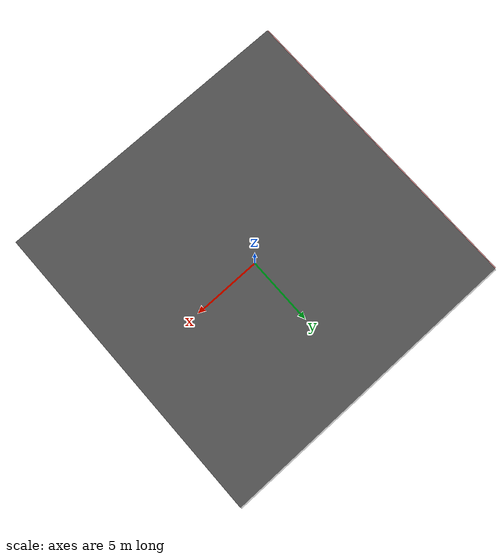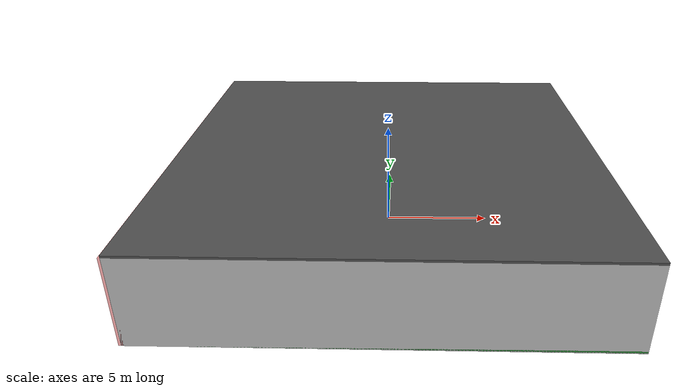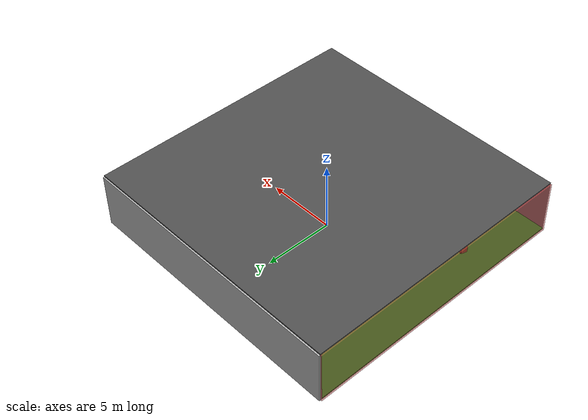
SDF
<sdf version="1.4">
 <world name="default">
  <physics type="ode">
   <max_step_size>0.001</max_step_size>
   <real_time_factor>1</real_time_factor>
   <real_time_update_rate>1000</real_time_update_rate>
   <gravity>0 0 -9.8</gravity>
  </physics>
  <scene><ambient>0.4 0.4 0.4 1</ambient><background>0.7 0.7 0.7 1</background><shadows>1</shadows></scene>
  <model name="Surrounding">
   <static>1</static>
   <link name="Ceiling">
    <collision name="Ceiling_Collision"><geometry><box><size>20 20 0.1</size></box></geometry></collision>
    <visual name="Ceiling_Visual">
     <geometry><box><size>20 20 0.1</size></box></geometry>
     <material>
      <script><uri>file://media/materials/scripts/gazebo.material</uri><name>Gazebo/Road</name></script>
     </material>
    </visual>
    <pose>0 0 4.05 0 0 0</pose>
   </link>
   <link name="Wall_South">
    <collision name="Wall_South_Collision">
     <geometry><box><size>20 0 4</size></box></geometry>
     <pose>0 0 2 0 -0 0</pose>
    </collision>
    <visual name="Wall_South_Visual">
     <pose>0 0 2 0 -0 0</pose>
     <geometry><box><size>20 0 4</size></box></geometry>
     <material>
      <script><uri>file://media/materials/scripts/gazebo.material</uri><name>Gazebo/CloudySky</name></script>
     </material>
    </visual>
    <velocity_decay><linear>0</linear><angular>0</angular></velocity_decay>
    <pose>0 -10 0 0 -0 0</pose>
   </link>
   <link name="Wall_East">
    <collision name="Wall_21_Collision">
     <geometry><box><size>20 0 4</size></box></geometry>
     <pose>0 0 2 0 -0 0</pose>
    </collision>
    <visual name="Wall_21_Visual">
     <pose>0 0 2 0 -0 0</pose>
     <geometry><box><size>20 0 4</size></box></geometry>
     <material>
      <script><uri>file://media/materials/scripts/gazebo.material</uri><name>Gazebo/Orange</name></script>
     </material>
    </visual>
    <velocity_decay><linear>0</linear><angular>0</angular></velocity_decay>
    <pose>10 0 0 0 -0 1.5708</pose>
   </link>
   <link name="Wall_North">
    <collision name="Wall_22_Collision">
     <geometry><box><size>20 0.2 4</size></box></geometry>
     <pose>0 0 2 0 -0 0</pose>
    </collision>
    <visual name="Wall_22_Visual">
     <pose>0 0 2 0 -0 0</pose>
     <geometry><box><size>20 0.2 4</size></box></geometry>
     <material>
      <script><uri>file://media/materials/scripts/gazebo.material</uri><name>Gazebo/CloudySky</name></script>
     </material>
    </visual>
    <velocity_decay><linear>0</linear><angular>0</angular></velocity_decay>
    <pose>0 10 0 0 -0 0</pose>
   </link>
   <link name="Wall_West">
    <collision name="Wall_23_Collision">
     <geometry><box><size>20 0.2 4</size></box></geometry>
     <pose>0 0 2 0 -0 0</pose>
    </collision>
    <visual name="Wall_23_Visual">
     <pose>0 0 2 0 -0 0</pose>
     <geometry><box><size>20 0.2 4</size></box></geometry>
     <material>
      <script><uri>file://media/materials/scripts/gazebo.material</uri><name>Gazebo/RedTransparent</name></script>
     </material>
    </visual>
    <velocity_decay><linear>0</linear><angular>0</angular></velocity_decay>
    <pose>-10 0 0 0 0 -1.5708</pose>
   </link>
   <link name="Ground_link">
    <collision name="collision">
     <pose>0 0 .05 0 -0 0</pose>
     <geometry><box><size>20 20 0.1</size></box></geometry>
    </collision>
    <visual name="visual">
     <pose>0 0 .05 0 -0 0</pose>
     <geometry><box><size>20 20 0.1</size></box></geometry>
     <material>
      <script><uri>file://media/materials/scripts/gazebo.material</uri><name>Gazebo/GreenGlow</name></script>
     </material>
    </visual>
   </link>
   <static>1</static>
  </model>
  <spherical_coordinates>
   <surface_model>EARTH_WGS84</surface_model>
   <latitude_deg>0</latitude_deg>
   <longitude_deg>0</longitude_deg>
   <elevation>0</elevation>
   <heading_deg>0</heading_deg>
  </spherical_coordinates>
  <light name="lightball_0" type="diffuse">
   <diffuse>0.8 0.8 0.8 1</diffuse>
   <specular>0.2 0.2 0.2 1</specular>
   <attenuation>
    <range>100</range>
    <constant>0.7</constant>
    <linear>0.01</linear>
    <quadratic>0.001</quadratic>
   </attenuation>
   <direction>-0.5 0.1 -0.9</direction>
   <pose>-1.30614400475 2.82463290589 3.10650596269 0 0 0</pose>
  </light>
  <light name="lightball_1" type="diffuse">
   <diffuse>0.8 0.8 0.8 1</diffuse>
   <specular>0.2 0.2 0.2 1</specular>
   <attenuation>
    <range>100</range>
    <constant>0.7</constant>
    <linear>0.01</linear>
    <quadratic>0.001</quadratic>
   </attenuation>
   <direction>-0.5 0.1 -0.9</direction>
   <pose>-4.15448540753 5.98534660307 3.8715048346 0 0 0</pose>
  </light>
  <light name="lightball_2" type="diffuse">
   <diffuse>0.8 0.8 0.8 1</diffuse>
   <specular>0.2 0.2 0.2 1</specular>
   <attenuation>
    <range>100</range>
    <constant>0.7</constant>
    <linear>0.01</linear>
    <quadratic>0.001</quadratic>
   </attenuation>
   <direction>-0.5 0.1 -0.9</direction>
   <pose>-4.1098190419 -1.90561168811 1.24113749176 0 0 0</pose>
  </light>
  <light name="lightball_3" type="diffuse">
   <diffuse>0.8 0.8 0.8 1</diffuse>
   <specular>0.2 0.2 0.2 1</specular>
   <attenuation>
    <range>100</range>
    <constant>0.7</constant>
    <linear>0.01</linear>
    <quadratic>0.001</quadratic>
   </attenuation>
   <direction>-0.5 0.1 -0.9</direction>
   <pose>-3.59653072281 1.6647921925 3.63049341454 0 0 0</pose>
  </light>
  <light name="lightball_4" type="diffuse">
   <diffuse>0.8 0.8 0.8 1</diffuse>
   <specular>0.2 0.2 0.2 1</specular>
   <attenuation>
    <range>100</range>
    <constant>0.7</constant>
    <linear>0.01</linear>
    <quadratic>0.001</quadratic>
   </attenuation>
   <direction>-0.5 0.1 -0.9</direction>
   <pose>-1.63452370368 -2.87543491872 3.20745457262 0 0 0</pose>
  </light>
  <light name="lightball_5" type="diffuse">
   <diffuse>0.8 0.8 0.8 1</diffuse>
   <specular>0.2 0.2 0.2 1</specular>
   <attenuation>
    <range>100</range>
    <constant>0.7</constant>
    <linear>0.01</linear>
    <quadratic>0.001</quadratic>
   </attenuation>
   <direction>-0.5 0.1 -0.9</direction>
   <pose>-2.90993465776 2.21938431894 0.688766314774 0 0 0</pose>
  </light>
  <light name="lightball_6" type="diffuse">
   <diffuse>0.8 0.8 0.8 1</diffuse>
   <specular>0.2 0.2 0.2 1</specular>
   <attenuation>
    <range>100</range>
    <constant>0.7</constant>
    <linear>0.01</linear>
    <quadratic>0.001</quadratic>
   </attenuation>
   <direction>-0.5 0.1 -0.9</direction>
   <pose>-4.55681448088 7.58618742734 3.72484084987 0 0 0</pose>
  </light>
  <light name="lightball_7" type="diffuse">
   <diffuse>0.8 0.8 0.8 1</diffuse>
   <specular>0.2 0.2 0.2 1</specular>
   <attenuation>
    <range>100</range>
    <constant>0.7</constant>
    <linear>0.01</linear>
    <quadratic>0.001</quadratic>
   </attenuation>
   <direction>-0.5 0.1 -0.9</direction>
   <pose>9.89020252546 0.95348984954 2.61016710954 0 0 0</pose>
  </light>
  <light name="lightball_8" type="diffuse">
   <diffuse>0.8 0.8 0.8 1</diffuse>
   <specular>0.2 0.2 0.2 1</specular>
   <attenuation>
    <range>100</range>
    <constant>0.7</constant>
    <linear>0.01</linear>
    <quadratic>0.001</quadratic>
   </attenuation>
   <direction>-0.5 0.1 -0.9</direction>
   <pose>1.75433966518 -6.49627461713 1.59934435737 0 0 0</pose>
  </light>
  <include><uri>model://cabinet</uri><pose>-7.72311972528 -4.63896214472 0 0 0 2.83290672424</pose></include>
  <include><uri>model://cabinet</uri><pose>-2.25046363412 4.18396537566 0 0 0 1.1474272839</pose></include>
  <include>
   <uri>model://construction_cone</uri>
   <pose>7.18591635882 2.15627693828 0 0 0 3.13791544675</pose>
  </include>
  <include><uri>model://cabinet</uri><pose>7.25193288516 8.05277790956 0 0 0 2.34828086815</pose></include>
 </world>
</sdf>

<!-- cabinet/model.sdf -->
<sdf version="1.5">
  <model name="cabinet">
    <static>true</static>
    <link name="cabinet_bottom_plate">
      <inertial>
        <pose>0 0 -1 0 0 0</pose>
        <inertia>
          <ixx>2.050000</ixx>
          <ixy>0</ixy>
          <ixz>0</ixz>
          <iyy>2.050000</iyy>
          <iyz>0</iyz>
          <izz>2.050000</izz>
        </inertia>
        <mass>25.000000</mass>
      </inertial>
      <collision name="cabinet_bottom_plate_geom">
        <pose>0 0 0.010000 0 0 0</pose>
        <geometry>
          <box>
            <size>0.450000 0.450000 0.020000</size>
          </box>
        </geometry>
      </collision>
      <visual name="cabinet_bottom_plate_geom_visual">
        <pose>0 0 0.010000 0 0 0</pose>
        <geometry>
          <box>
            <size>0.450000 0.450000 0.020000</size>
          </box>
        </geometry>
        <material>
          <script>
            <uri>model://media/materials/scripts/gazebo.material</uri>
            <name>Gazebo/Wood</name>
          </script>
        </material>
      </visual>
      <collision name="cabinet_bottom_plate_geom_cabinet_back_plate">
        <pose>0.235000 0 0.510000 0 0 0</pose>
        <geometry>
          <box>
            <size>0.020000 0.450000 1.020000</size>
          </box>
        </geometry>
      </collision>
      <visual name="cabinet_bottom_plate_geom_cabinet_back_plate_visual">
        <pose>0.235000 0 0.510000 0 0 0</pose>
        <geometry>
          <box>
            <size>0.020000 0.450000 1.020000</size>
          </box>
        </geometry>
        <material>
          <script>
            <uri>model://media/materials/scripts/gazebo.material</uri>
            <name>Gazebo/Wood</name>
          </script>
        </material>
      </visual>
      <collision name="cabinet_bottom_plate_geom_cabinet_left_plate">
        <pose>0 0.235000 0.510000 0 0 0</pose>
        <geometry>
          <box>
            <size>0.450000 0.020000 1.020000</size>
          </box>
        </geometry>
      </collision>
      <visual name="cabinet_bottom_plate_geom_cabinet_left_plate_visual">
        <pose>0 0.235000 0.510000 0 0 0</pose>
        <geometry>
          <box>
            <size>0.450000 0.020000 1.020000</size>
          </box>
        </geometry>
        <material>
          <script>
            <uri>model://media/materials/scripts/gazebo.material</uri>
            <name>Gazebo/Wood</name>
          </script>
        </material>
      </visual>
      <collision name="cabinet_bottom_plate_geom_cabinet_middle_plate">
        <pose>0 0 0.510000 0 0 0</pose>
        <geometry>
          <box>
            <size>0.450000 0.450000 0.020000</size>
          </box>
        </geometry>
      </collision>
      <visual name="cabinet_bottom_plate_geom_cabinet_middle_plate_visual">
        <pose>0 0 0.510000 0 0 0</pose>
        <geometry>
          <box>
            <size>0.450000 0.450000 0.020000</size>
          </box>
        </geometry>
        <material>
          <script>
            <uri>model://media/materials/scripts/gazebo.material</uri>
            <name>Gazebo/Wood</name>
          </script>
        </material>
      </visual>
      <collision name="cabinet_bottom_plate_geom_cabinet_right_plate">
        <pose>0 -0.235000 0.510000 0 0 0</pose>
        <geometry>
          <box>
            <size>0.450000 0.020000 1.020000</size>
          </box>
        </geometry>
      </collision>
      <visual name="cabinet_bottom_plate_geom_cabinet_right_plate_visual">
        <pose>0 -0.235000 0.510000 0 0 0</pose>
        <geometry>
          <box>
            <size>0.450000 0.020000 1.020000</size>
          </box>
        </geometry>
        <material>
          <script>
            <uri>model://media/materials/scripts/gazebo.material</uri>
            <name>Gazebo/Wood</name>
          </script>
        </material>
      </visual>
      <collision name="cabinet_bottom_plate_geom_cabinet_top_plate">
        <pose>0 0 1.010000 0 0 0</pose>
        <geometry>
          <box>
            <size>0.450000 0.450000 0.020000</size>
          </box>
        </geometry>
      </collision>
      <visual name="cabinet_bottom_plate_geom_cabinet_top_plate_visual">
        <pose>0 0 1.010000 0 0 0</pose>
        <geometry>
          <box>
            <size>0.450000 0.450000 0.020000</size>
          </box>
        </geometry>
        <material>
          <script>
            <uri>model://media/materials/scripts/gazebo.material</uri>
            <name>Gazebo/Wood</name>
          </script>
        </material>
      </visual>
    </link>
  </model>
</sdf>

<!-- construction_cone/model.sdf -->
<sdf version="1.5">
  <model name="Construction Cone">
    <link name="link">
      <collision name="collision">
        <geometry>
          <mesh>
            <scale>10 10 10</scale>
            <uri>file://isr-testbed/construction_cone/meshes/construction_cone.dae</uri>
          </mesh>
        </geometry>
      </collision>
      <visual name="visual">
        <geometry>
          <mesh>
            <scale>10 10 10</scale>
            <uri>file://isr-testbed/construction_cone/meshes/construction_cone.dae</uri>
          </mesh>
        </geometry>
      </visual>
    </link>
  </model>
</sdf>
